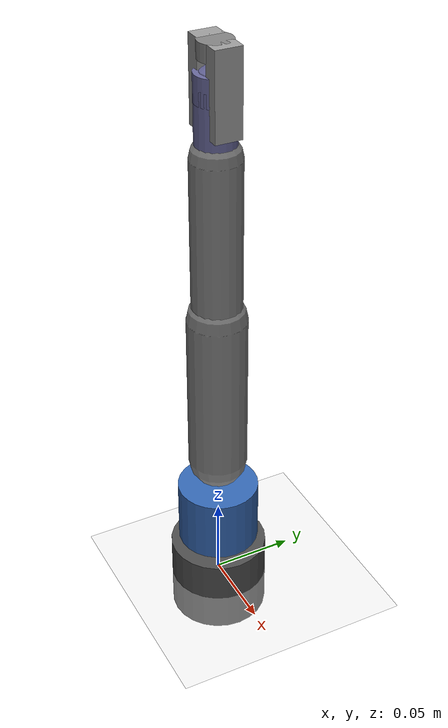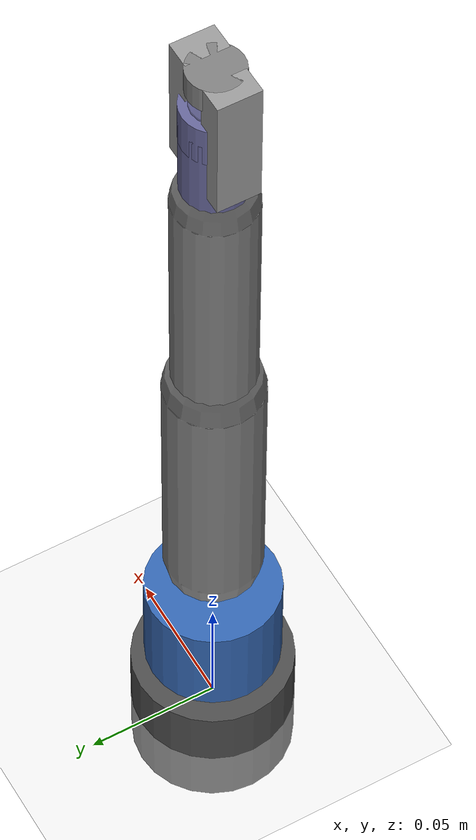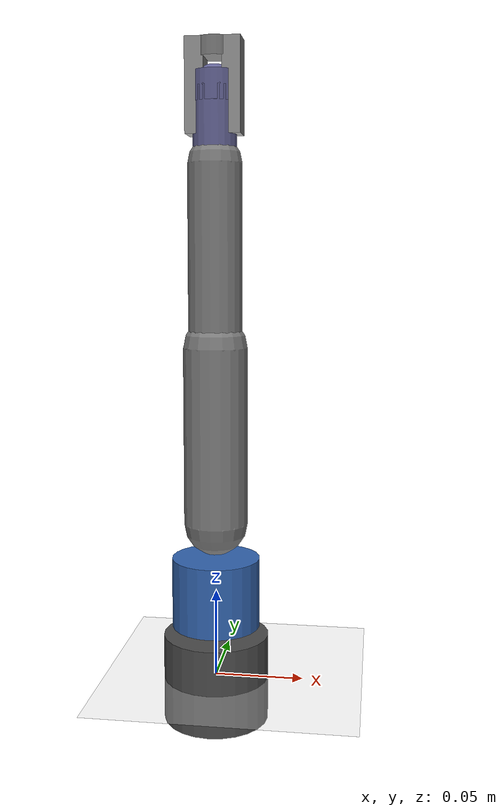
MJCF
<mujoco model="so101">
  <compiler angle="radian" autolimits="true"/>

  <option timestep="0.002" gravity="0 0 -9.81" integrator="implicit"/>

  <default>
    <joint damping="0.5" armature="0.01"/>
    <geom contype="1" conaffinity="1" condim="4" friction="0.8 0.02 0.01"/>
    <position kp="50" ctrlrange="-3.14159 3.14159"/>
  </default>

  <worldbody>
    <!-- Base — fixed to world -->
    <body name="base_link" pos="0 0 0">
      <geom name="base_geom" type="cylinder" size="0.03 0.025"
            rgba="0.3 0.3 0.3 1" mass="0.1"/>

      <!-- Shoulder pan — rotates around Z -->
      <body name="shoulder_pan_link" pos="0 0 0.05">
        <joint name="shoulder_pan" type="hinge" axis="0 0 1"
               range="-3.14 3.14"/>
        <geom name="shoulder_pan_geom" type="cylinder" size="0.025 0.02"
              rgba="0.2 0.4 0.7 1" mass="0.06"/>

        <!-- Shoulder lift — rotates around Y -->
        <body name="shoulder_lift_link" pos="0 0 0.04">
          <joint name="shoulder_lift" type="hinge" axis="0 1 0"
                 range="-1.57 2.0"/>
          <geom name="shoulder_lift_geom" type="capsule"
                fromto="0 0 0 0 0 0.10"
                size="0.018" rgba="0.5 0.5 0.5 1" mass="0.08"/>

          <!-- Elbow flex -->
          <body name="elbow_flex_link" pos="0 0 0.10">
            <joint name="elbow_flex" type="hinge" axis="0 1 0"
                   range="-2.4 0.1"/>
            <geom name="elbow_flex_geom" type="capsule"
                  fromto="0 0 0 0 0 0.10"
                  size="0.015" rgba="0.5 0.5 0.5 1" mass="0.07"/>

            <!-- Wrist flex -->
            <body name="wrist_flex_link" pos="0 0 0.10">
              <joint name="wrist_flex" type="hinge" axis="0 1 0"
                     range="-1.57 1.57"/>
              <geom name="wrist_flex_geom" type="capsule"
                    fromto="0 0 0 0 0 0.04"
                    size="0.012" rgba="0.4 0.4 0.6 1" mass="0.04"/>

              <!-- Wrist roll -->
              <body name="wrist_roll_link" pos="0 0 0.04">
                <joint name="wrist_roll" type="hinge" axis="0 0 1"
                       range="-3.14 3.14"/>
                <geom name="wrist_roll_geom" type="cylinder" size="0.012 0.008"
                      rgba="0.4 0.4 0.6 1" mass="0.02"/>

                <!-- Gripper mount -->
                <body name="gripper_link" pos="0 0 0.02">
                  <joint name="gripper" type="hinge" axis="0 1 0"
                         range="-0.5 0.5" damping="1.0"/>
                  <geom name="gripper_mount_geom" type="cylinder" size="0.01 0.005"
                        rgba="0.5 0.5 0.5 1" mass="0.005"/>

                  <!-- Left finger -->
                  <body name="finger_left" pos="-0.01 0 -0.02">
                    <geom name="finger_left_geom" type="box"
                          size="0.005 0.008 0.025"
                          rgba="0.6 0.6 0.6 1" mass="0.015"
                          friction="1.0 0.05 0.01"/>
                  </body>
                  <!-- Right finger -->
                  <body name="finger_right" pos="0.01 0 -0.02">
                    <geom name="finger_right_geom" type="box"
                          size="0.005 0.008 0.025"
                          rgba="0.6 0.6 0.6 1" mass="0.015"
                          friction="1.0 0.05 0.01"/>
                  </body>
                </body>

              </body>
            </body>
          </body>
        </body>
      </body>
    </body>

    <!-- Ground plane -->
    <geom name="floor" type="plane" size="1 1 0.01"
          rgba="0.9 0.9 0.9 1" conaffinity="1" condim="3"/>
  </worldbody>

  <actuator>
    <position name="shoulder_pan"  joint="shoulder_pan"  kp="50"/>
    <position name="shoulder_lift" joint="shoulder_lift" kp="50"/>
    <position name="elbow_flex"    joint="elbow_flex"    kp="50"/>
    <position name="wrist_flex"    joint="wrist_flex"    kp="40"/>
    <position name="wrist_roll"    joint="wrist_roll"    kp="30"/>
    <position name="gripper"       joint="gripper"       kp="80"
              ctrlrange="-0.5 0.5"/>
  </actuator>
</mujoco>
